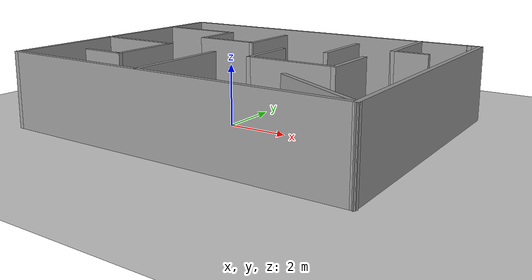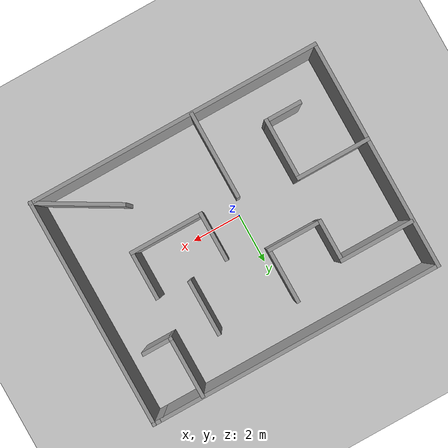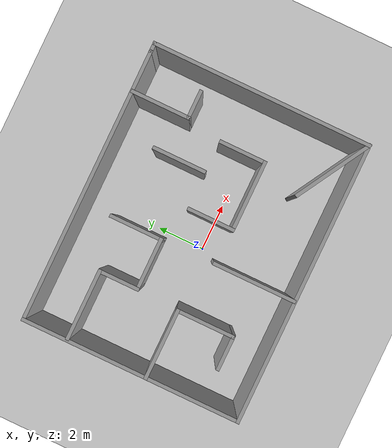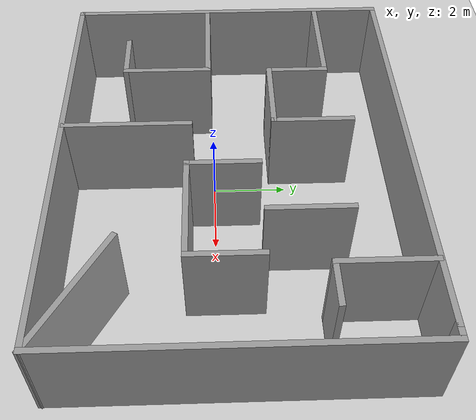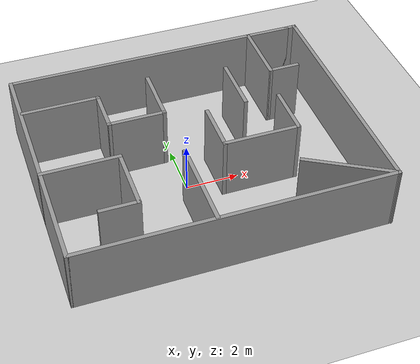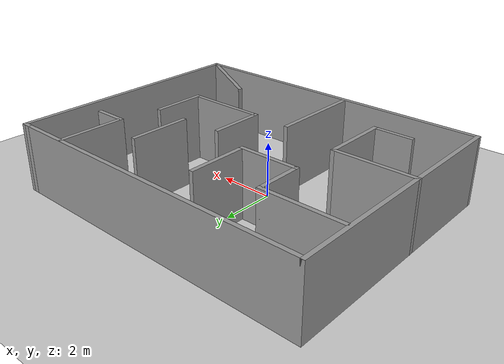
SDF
<sdf version="1.6">
 <world name="default">
  <light name="sun" type="directional">
   <pose>0 0 10 0 -0 0</pose>
   <diffuse>0.8 0.8 0.8 1</diffuse>
   <specular>0.2 0.2 0.2 1</specular>
   <attenuation>
    <range>1000</range>
    <constant>0.9</constant>
    <linear>0.01</linear>
    <quadratic>0.001</quadratic>
   </attenuation>
   <direction>-0.5 0.1 -0.9</direction>
  </light>
  <model name="ground_plane">
   <static>1</static>
   <link name="link">
    <collision name="collision">
     <geometry><plane><normal>0 0 1</normal><size>100 100</size></plane></geometry>
     <surface><friction><ode><mu>100</mu><mu2>50</mu2></ode></friction></surface>
    </collision>
    <visual name="visual">
     <cast_shadows>0</cast_shadows>
     <geometry><plane><normal>0 0 1</normal><size>100 100</size></plane></geometry>
     <material>
      <script><uri>file://media/materials/scripts/gazebo.material</uri><name>Gazebo/Grey</name></script>
     </material>
    </visual>
   </link>
  </model>
  <gravity>0 0 -9.8</gravity>
  <magnetic_field>6e-06 2.3e-05 -4.2e-05</magnetic_field>
  <atmosphere type="adiabatic"/>
  <physics name="default_physics" default="0" type="ode">
   <max_step_size>0.001</max_step_size>
   <real_time_factor>1</real_time_factor>
   <real_time_update_rate>1000</real_time_update_rate>
  </physics>
  <scene><ambient>0.4 0.4 0.4 1</ambient><background>0.7 0.7 0.7 1</background><shadows>1</shadows></scene>
  <spherical_coordinates>
   <surface_model>EARTH_WGS84</surface_model>
   <latitude_deg>0</latitude_deg>
   <longitude_deg>0</longitude_deg>
   <elevation>0</elevation>
   <heading_deg>0</heading_deg>
  </spherical_coordinates>
  <model name="room1">
   <pose>0.521758 0.511786 0 0 -0 0</pose>
   <link name="Wall_10">
    <collision name="Wall_10_Collision">
     <geometry><box><size>0.5 0.15 2.5</size></box></geometry>
     <pose>0 0 1.25 0 -0 0</pose>
    </collision>
    <visual name="Wall_10_Visual">
     <pose>0 0 1.25 0 -0 0</pose>
     <geometry><box><size>0.5 0.15 2.5</size></box></geometry>
     <material>
      <script><uri>file://media/materials/scripts/gazebo.material</uri><name>Gazebo/Grey</name></script>
      <ambient>1 1 1 1</ambient>
     </material>
     <meta><layer>0</layer></meta>
    </visual>
    <pose>5.6623 4.56359 0 0 -0 0</pose>
   </link>
   <link name="Wall_11">
    <collision name="Wall_11_Collision">
     <geometry><box><size>9.25055 0.15 2.5</size></box></geometry>
     <pose>0 0 1.25 0 -0 0</pose>
    </collision>
    <visual name="Wall_11_Visual">
     <pose>0 0 1.25 0 -0 0</pose>
     <geometry><box><size>9.25055 0.15 2.5</size></box></geometry>
     <material>
      <script><uri>file://media/materials/scripts/gazebo.material</uri><name>Gazebo/Grey</name></script>
      <ambient>1 1 1 1</ambient>
     </material>
     <meta><layer>0</layer></meta>
    </visual>
    <pose>5.8373 0.013589 0 0 -0 -1.5708</pose>
   </link>
   <link name="Wall_12">
    <collision name="Wall_12_Collision">
     <geometry><box><size>3.5 0.15 2.5</size></box></geometry>
     <pose>0 0 1.25 0 -0 0</pose>
    </collision>
    <visual name="Wall_12_Visual">
     <pose>0 0 1.25 0 -0 0</pose>
     <geometry><box><size>3.5 0.15 2.5</size></box></geometry>
     <material>
      <script><uri>file://media/materials/scripts/gazebo.material</uri><name>Gazebo/Grey</name></script>
      <ambient>1 1 1 1</ambient>
     </material>
     <meta><layer>0</layer></meta>
    </visual>
    <pose>4.38671 -3.69891 0 0 -0 2.61799</pose>
   </link>
   <link name="Wall_14">
    <collision name="Wall_14_Collision">
     <geometry><box><size>3 0.15 2.5</size></box></geometry>
     <pose>0 0 1.25 0 -0 0</pose>
    </collision>
    <visual name="Wall_14_Visual">
     <pose>0 0 1.25 0 -0 0</pose>
     <geometry><box><size>3 0.15 2.5</size></box></geometry>
     <material>
      <script><uri>file://media/materials/scripts/gazebo.material</uri><name>Gazebo/Grey</name></script>
      <ambient>1 1 1 1</ambient>
     </material>
     <meta><layer>0</layer></meta>
    </visual>
    <pose>-4.43975 -0.632464 0 0 -0 0</pose>
   </link>
   <link name="Wall_15">
    <collision name="Wall_15_Collision">
     <geometry><box><size>2.5 0.15 2.5</size></box></geometry>
     <pose>0 0 1.25 0 -0 0</pose>
    </collision>
    <visual name="Wall_15_Visual">
     <pose>0 0 1.25 0 -0 0</pose>
     <geometry><box><size>2.5 0.15 2.5</size></box></geometry>
     <material>
      <script><uri>file://media/materials/scripts/gazebo.material</uri><name>Gazebo/Grey</name></script>
      <ambient>1 1 1 1</ambient>
     </material>
     <meta><layer>0</layer></meta>
    </visual>
    <pose>-3.01475 -1.80746 0 0 -0 -1.5708</pose>
   </link>
   <link name="Wall_16">
    <collision name="Wall_16_Collision">
     <geometry><box><size>1.5 0.15 2.5</size></box></geometry>
     <pose>0 0 1.25 0 -0 0</pose>
    </collision>
    <visual name="Wall_16_Visual">
     <pose>0 0 1.25 0 -0 0</pose>
     <geometry><box><size>1.5 0.15 2.5</size></box></geometry>
     <material>
      <script><uri>file://media/materials/scripts/gazebo.material</uri><name>Gazebo/Grey</name></script>
      <ambient>1 1 1 1</ambient>
     </material>
     <meta><layer>0</layer></meta>
    </visual>
    <pose>-3.68975 -2.98246 0 0 -0 3.14159</pose>
   </link>
   <link name="Wall_18">
    <collision name="Wall_18_Collision">
     <geometry><box><size>3.5 0.15 2.5</size></box></geometry>
     <pose>0 0 1.25 0 -0 0</pose>
    </collision>
    <visual name="Wall_18_Visual">
     <pose>0 0 1.25 0 -0 0</pose>
     <geometry><box><size>3.5 0.15 2.5</size></box></geometry>
     <material>
      <script><uri>file://media/materials/scripts/gazebo.material</uri><name>Gazebo/Grey</name></script>
      <ambient>1 1 1 1</ambient>
     </material>
     <meta><layer>0</layer></meta>
    </visual>
    <pose>-0.784114 -2.81449 0 0 -0 1.5708</pose>
   </link>
   <link name="Wall_2">
    <collision name="Wall_2_Collision">
     <geometry><box><size>11.75 0.15 2.5</size></box></geometry>
     <pose>0 0 1.25 0 -0 0</pose>
    </collision>
    <visual name="Wall_2_Visual">
     <pose>0 0 1.25 0 -0 0</pose>
     <geometry><box><size>11.75 0.15 2.5</size></box></geometry>
     <material>
      <script><uri>file://media/materials/scripts/gazebo.material</uri><name>Gazebo/Grey</name></script>
      <ambient>1 1 1 1</ambient>
     </material>
     <meta><layer>0</layer></meta>
    </visual>
    <pose>-0.062701 -4.53641 0 0 -0 0</pose>
   </link>
   <link name="Wall_20">
    <collision name="Wall_20_Collision">
     <geometry><box><size>2 0.15 2.5</size></box></geometry>
     <pose>0 0 1.25 0 -0 0</pose>
    </collision>
    <visual name="Wall_20_Visual">
     <pose>0 0 1.25 0 -0 0</pose>
     <geometry><box><size>2 0.15 2.5</size></box></geometry>
     <material>
      <script><uri>file://media/materials/scripts/gazebo.material</uri><name>Gazebo/Grey</name></script>
      <ambient>1 1 1 1</ambient>
     </material>
     <meta><layer>0</layer></meta>
    </visual>
    <pose>0.678897 -0.280655 0 0 -0 -1.5708</pose>
   </link>
   <link name="Wall_21">
    <collision name="Wall_21_Collision">
     <geometry><box><size>3 0.15 2.5</size></box></geometry>
     <pose>0 0 1.25 0 -0 0</pose>
    </collision>
    <visual name="Wall_21_Visual">
     <pose>0 0 1.25 0 -0 0</pose>
     <geometry><box><size>3 0.15 2.5</size></box></geometry>
     <material>
      <script><uri>file://media/materials/scripts/gazebo.material</uri><name>Gazebo/Grey</name></script>
      <ambient>1 1 1 1</ambient>
     </material>
     <meta><layer>0</layer></meta>
    </visual>
    <pose>2.1039 -1.20565 0 0 -0 0</pose>
   </link>
   <link name="Wall_22">
    <collision name="Wall_22_Collision">
     <geometry><box><size>2 0.15 2.5</size></box></geometry>
     <pose>0 0 1.25 0 -0 0</pose>
    </collision>
    <visual name="Wall_22_Visual">
     <pose>0 0 1.25 0 -0 0</pose>
     <geometry><box><size>2 0.15 2.5</size></box></geometry>
     <material>
      <script><uri>file://media/materials/scripts/gazebo.material</uri><name>Gazebo/Grey</name></script>
      <ambient>1 1 1 1</ambient>
     </material>
     <meta><layer>0</layer></meta>
    </visual>
    <pose>3.5289 -0.280655 0 0 -0 1.5708</pose>
   </link>
   <link name="Wall_24">
    <collision name="Wall_24_Collision">
     <geometry><box><size>3 0.15 2.5</size></box></geometry>
     <pose>0 0 1.25 0 -0 0</pose>
    </collision>
    <visual name="Wall_24_Visual">
     <pose>0 0 1.25 0 -0 0</pose>
     <geometry><box><size>3 0.15 2.5</size></box></geometry>
     <material>
      <script><uri>file://media/materials/scripts/gazebo.material</uri><name>Gazebo/Grey</name></script>
      <ambient>1 1 1 1</ambient>
     </material>
     <meta><layer>0</layer></meta>
    </visual>
    <pose>-4.35995 2.71916 0 0 -0 0</pose>
   </link>
   <link name="Wall_25">
    <collision name="Wall_25_Collision">
     <geometry><box><size>1.75 0.15 2.5</size></box></geometry>
     <pose>0 0 1.25 0 -0 0</pose>
    </collision>
    <visual name="Wall_25_Visual">
     <pose>0 0 1.25 0 -0 0</pose>
     <geometry><box><size>1.75 0.15 2.5</size></box></geometry>
     <material>
      <script><uri>file://media/materials/scripts/gazebo.material</uri><name>Gazebo/Grey</name></script>
      <ambient>1 1 1 1</ambient>
     </material>
     <meta><layer>0</layer></meta>
    </visual>
    <pose>-2.93495 1.91916 0 0 -0 -1.5708</pose>
   </link>
   <link name="Wall_26">
    <collision name="Wall_26_Collision">
     <geometry><box><size>2.25 0.15 2.5</size></box></geometry>
     <pose>0 0 1.25 0 -0 0</pose>
    </collision>
    <visual name="Wall_26_Visual">
     <pose>0 0 1.25 0 -0 0</pose>
     <geometry><box><size>2.25 0.15 2.5</size></box></geometry>
     <material>
      <script><uri>file://media/materials/scripts/gazebo.material</uri><name>Gazebo/Grey</name></script>
      <ambient>1 1 1 1</ambient>
     </material>
     <meta><layer>0</layer></meta>
    </visual>
    <pose>-1.88495 1.11916 0 0 -0 0</pose>
   </link>
   <link name="Wall_27">
    <collision name="Wall_27_Collision">
     <geometry><box><size>2.25 0.15 2.5</size></box></geometry>
     <pose>0 0 1.25 0 -0 0</pose>
    </collision>
    <visual name="Wall_27_Visual">
     <pose>0 0 1.25 0 -0 0</pose>
     <geometry><box><size>2.25 0.15 2.5</size></box></geometry>
     <material>
      <script><uri>file://media/materials/scripts/gazebo.material</uri><name>Gazebo/Grey</name></script>
      <ambient>1 1 1 1</ambient>
     </material>
     <meta><layer>0</layer></meta>
    </visual>
    <pose>-0.834951 2.16916 0 0 -0 1.5708</pose>
   </link>
   <link name="Wall_29">
    <collision name="Wall_29_Collision">
     <geometry><box><size>2.25 0.15 2.5</size></box></geometry>
     <pose>0 0 1.25 0 -0 0</pose>
    </collision>
    <visual name="Wall_29_Visual">
     <pose>0 0 1.25 0 -0 0</pose>
     <geometry><box><size>2.25 0.15 2.5</size></box></geometry>
     <material>
      <script><uri>file://media/materials/scripts/gazebo.material</uri><name>Gazebo/Grey</name></script>
      <ambient>1 1 1 1</ambient>
     </material>
     <meta><layer>0</layer></meta>
    </visual>
    <pose>2.22171 1.80216 0 0 -0 -1.5708</pose>
   </link>
   <link name="Wall_31">
    <collision name="Wall_31_Collision">
     <geometry><box><size>2.5 0.15 2.5</size></box></geometry>
     <pose>0 0 1.25 0 -0 0</pose>
    </collision>
    <visual name="Wall_31_Visual">
     <pose>0 0 1.25 0 -0 0</pose>
     <geometry><box><size>2.5 0.15 2.5</size></box></geometry>
     <material>
      <script><uri>file://media/materials/scripts/gazebo.material</uri><name>Gazebo/Grey</name></script>
      <ambient>1 1 1 1</ambient>
     </material>
     <meta><layer>0</layer></meta>
    </visual>
    <pose>3.81772 3.35297 0 0 -0 -1.5708</pose>
   </link>
   <link name="Wall_32">
    <collision name="Wall_32_Collision">
     <geometry><box><size>1.25 0.15 2.5</size></box></geometry>
     <pose>0 0 1.25 0 -0 0</pose>
    </collision>
    <visual name="Wall_32_Visual">
     <pose>0 0 1.25 0 -0 0</pose>
     <geometry><box><size>1.25 0.15 2.5</size></box></geometry>
     <material>
      <script><uri>file://media/materials/scripts/gazebo.material</uri><name>Gazebo/Grey</name></script>
      <ambient>1 1 1 1</ambient>
     </material>
     <meta><layer>0</layer></meta>
    </visual>
    <pose>4.36772 2.17797 0 0 -0 0</pose>
   </link>
   <link name="Wall_8">
    <collision name="Wall_8_Collision">
     <geometry><box><size>9.25 0.15 2.5</size></box></geometry>
     <pose>0 0 1.25 0 -0 0</pose>
    </collision>
    <visual name="Wall_8_Visual">
     <pose>0 0 1.25 0 -0 0</pose>
     <geometry><box><size>9.25 0.15 2.5</size></box></geometry>
     <material>
      <script><uri>file://media/materials/scripts/gazebo.material</uri><name>Gazebo/Grey</name></script>
      <ambient>1 1 1 1</ambient>
     </material>
     <meta><layer>0</layer></meta>
    </visual>
    <pose>-5.8627 0.013589 0 0 -0 1.5708</pose>
   </link>
   <link name="Wall_9">
    <collision name="Wall_9_Collision">
     <geometry><box><size>11.5 0.15 2.5</size></box></geometry>
     <pose>0 0 1.25 0 -0 0</pose>
    </collision>
    <visual name="Wall_9_Visual">
     <pose>0 0 1.25 0 -0 0</pose>
     <geometry><box><size>11.5 0.15 2.5</size></box></geometry>
     <material>
      <script><uri>file://media/materials/scripts/gazebo.material</uri><name>Gazebo/Grey</name></script>
      <ambient>1 1 1 1</ambient>
     </material>
     <meta><layer>0</layer></meta>
    </visual>
    <pose>-0.187701 4.56359 0 0 -0 0</pose>
   </link>
   <static>1</static>
  </model>
 </world>
</sdf>
